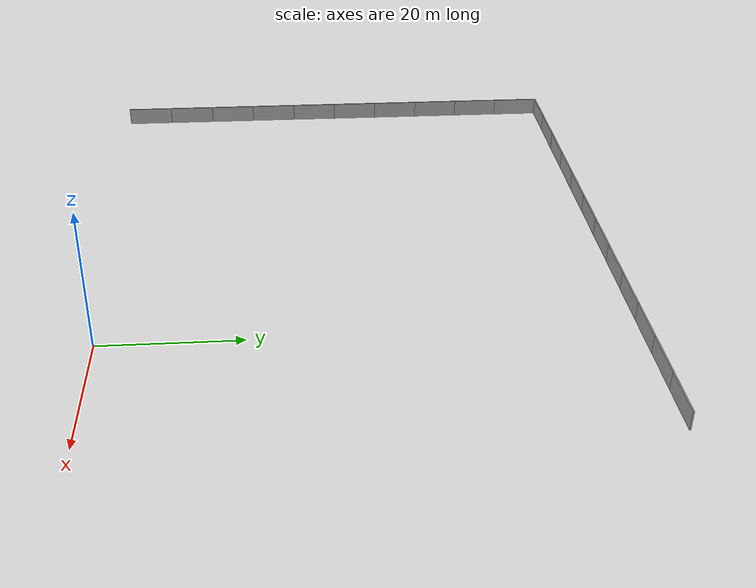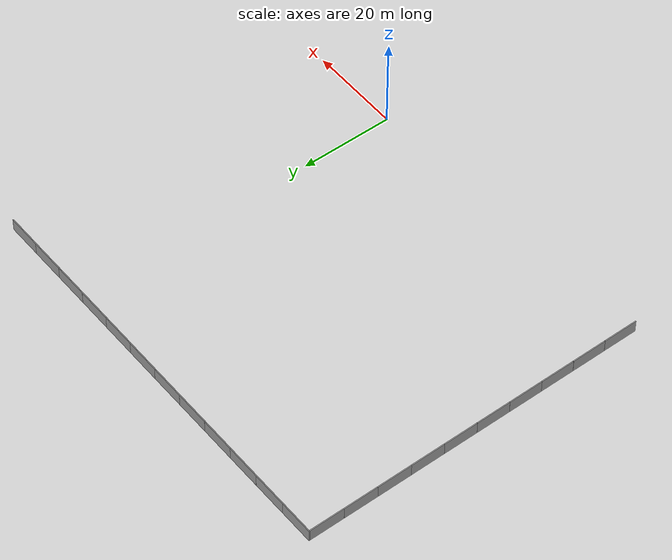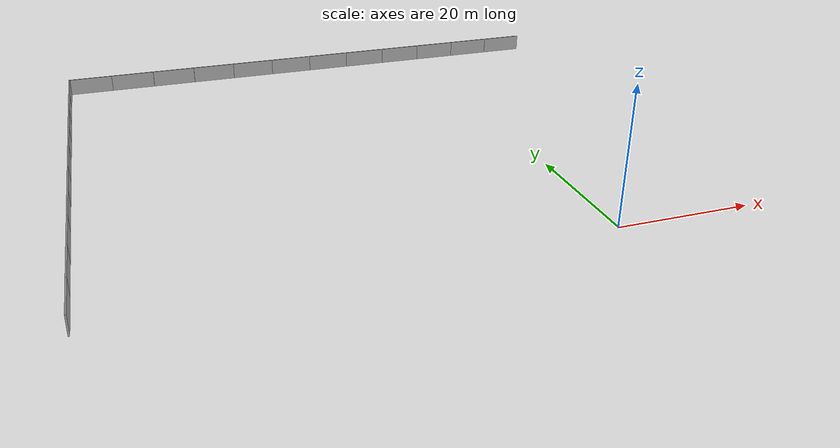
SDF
<sdf version="1.6">
 <world name="default">
  <model name="grey_wall_clone_10_clone_clone_8">
   <static>1</static>
   <link name="link">
    <pose>0 0 1.4 0 -0 0</pose>
    <collision name="collision"><geometry><box><size>7.5 0.2 2.8</size></box></geometry></collision>
    <visual name="visual">
     <cast_shadows>0</cast_shadows>
     <geometry><box><size>7.5 0.2 2.8</size></box></geometry>
     <material>
      <script>
       <uri>model://forest/grey_wall/materials/scripts</uri>
       <uri>model://forest/grey_wall/materials/textures</uri>
       <name>vrc/grey_wall</name>
      </script>
     </material>
    </visual>
   </link>
   <pose>17.3775 72.6269 0 0 -0 0</pose>
  </model>
  <model name="grey_wall_clone_10_clone_clone_9">
   <static>1</static>
   <link name="link">
    <pose>0 0 1.4 0 -0 0</pose>
    <collision name="collision"><geometry><box><size>7.5 0.2 2.8</size></box></geometry></collision>
    <visual name="visual">
     <cast_shadows>0</cast_shadows>
     <geometry><box><size>7.5 0.2 2.8</size></box></geometry>
     <material>
      <script>
       <uri>model://forest/grey_wall/materials/scripts</uri>
       <uri>model://forest/grey_wall/materials/textures</uri>
       <name>vrc/grey_wall</name>
      </script>
     </material>
    </visual>
   </link>
   <pose>9.8792 72.6386 0 0 -0 0</pose>
  </model>
  <model name="grey_wall_clone_10_clone_clone_10">
   <static>1</static>
   <link name="link">
    <pose>0 0 1.4 0 -0 0</pose>
    <collision name="collision"><geometry><box><size>7.5 0.2 2.8</size></box></geometry></collision>
    <visual name="visual">
     <cast_shadows>0</cast_shadows>
     <geometry><box><size>7.5 0.2 2.8</size></box></geometry>
     <material>
      <script>
       <uri>model://forest/grey_wall/materials/scripts</uri>
       <uri>model://forest/grey_wall/materials/textures</uri>
       <name>vrc/grey_wall</name>
      </script>
     </material>
    </visual>
   </link>
   <pose>2.37975 72.635 0 0 -0 0</pose>
  </model>
  <model name="grey_wall_clone_10_clone_clone_11">
   <static>1</static>
   <link name="link">
    <pose>0 0 1.4 0 -0 0</pose>
    <collision name="collision"><geometry><box><size>7.5 0.2 2.8</size></box></geometry></collision>
    <visual name="visual">
     <cast_shadows>0</cast_shadows>
     <geometry><box><size>7.5 0.2 2.8</size></box></geometry>
     <material>
      <script>
       <uri>model://forest/grey_wall/materials/scripts</uri>
       <uri>model://forest/grey_wall/materials/textures</uri>
       <name>vrc/grey_wall</name>
      </script>
     </material>
    </visual>
   </link>
   <pose>-5.09788 72.6331 0 0 -0 0</pose>
  </model>
  <model name="grey_wall_clone_10_clone_clone_12">
   <static>1</static>
   <link name="link">
    <pose>0 0 1.4 0 -0 0</pose>
    <collision name="collision"><geometry><box><size>7.5 0.2 2.8</size></box></geometry></collision>
    <visual name="visual">
     <cast_shadows>0</cast_shadows>
     <geometry><box><size>7.5 0.2 2.8</size></box></geometry>
     <material>
      <script>
       <uri>model://forest/grey_wall/materials/scripts</uri>
       <uri>model://forest/grey_wall/materials/textures</uri>
       <name>vrc/grey_wall</name>
      </script>
     </material>
    </visual>
   </link>
   <pose>-12.6061 72.6425 0 0 -0 0</pose>
  </model>
  <model name="grey_wall_clone_10_clone_clone_13">
   <static>1</static>
   <link name="link">
    <pose>0 0 1.4 0 -0 0</pose>
    <collision name="collision"><geometry><box><size>7.5 0.2 2.8</size></box></geometry></collision>
    <visual name="visual">
     <cast_shadows>0</cast_shadows>
     <geometry><box><size>7.5 0.2 2.8</size></box></geometry>
     <material>
      <script>
       <uri>model://forest/grey_wall/materials/scripts</uri>
       <uri>model://forest/grey_wall/materials/textures</uri>
       <name>vrc/grey_wall</name>
      </script>
     </material>
    </visual>
   </link>
   <pose>-20.1193 72.6527 0 0 -0 0</pose>
  </model>
  <model name="grey_wall_clone_10_clone_clone_14">
   <static>1</static>
   <link name="link">
    <pose>0 0 1.4 0 -0 0</pose>
    <collision name="collision"><geometry><box><size>7.5 0.2 2.8</size></box></geometry></collision>
    <visual name="visual">
     <cast_shadows>0</cast_shadows>
     <geometry><box><size>7.5 0.2 2.8</size></box></geometry>
     <material>
      <script>
       <uri>model://forest/grey_wall/materials/scripts</uri>
       <uri>model://forest/grey_wall/materials/textures</uri>
       <name>vrc/grey_wall</name>
      </script>
     </material>
    </visual>
   </link>
   <pose>-27.6199 72.6558 0 0 -0 0</pose>
  </model>
  <model name="grey_wall_clone_10_clone_clone_15">
   <static>1</static>
   <link name="link">
    <pose>0 0 1.4 0 -0 0</pose>
    <collision name="collision"><geometry><box><size>7.5 0.2 2.8</size></box></geometry></collision>
    <visual name="visual">
     <cast_shadows>0</cast_shadows>
     <geometry><box><size>7.5 0.2 2.8</size></box></geometry>
     <material>
      <script>
       <uri>model://forest/grey_wall/materials/scripts</uri>
       <uri>model://forest/grey_wall/materials/textures</uri>
       <name>vrc/grey_wall</name>
      </script>
     </material>
    </visual>
   </link>
   <pose>-35.1125 72.6503 0 0 -0 0</pose>
  </model>
  <model name="grey_wall_clone_10_clone_clone_16">
   <static>1</static>
   <link name="link">
    <pose>0 0 1.4 0 -0 0</pose>
    <collision name="collision"><geometry><box><size>7.5 0.2 2.8</size></box></geometry></collision>
    <visual name="visual">
     <cast_shadows>0</cast_shadows>
     <geometry><box><size>7.5 0.2 2.8</size></box></geometry>
     <material>
      <script>
       <uri>model://forest/grey_wall/materials/scripts</uri>
       <uri>model://forest/grey_wall/materials/textures</uri>
       <name>vrc/grey_wall</name>
      </script>
     </material>
    </visual>
   </link>
   <pose>-42.606 72.6465 0 0 -0 0</pose>
  </model>
  <model name="grey_wall_clone_10_clone_clone_17">
   <static>1</static>
   <link name="link">
    <pose>0 0 1.4 0 -0 0</pose>
    <collision name="collision"><geometry><box><size>7.5 0.2 2.8</size></box></geometry></collision>
    <visual name="visual">
     <cast_shadows>0</cast_shadows>
     <geometry><box><size>7.5 0.2 2.8</size></box></geometry>
     <material>
      <script>
       <uri>model://forest/grey_wall/materials/scripts</uri>
       <uri>model://forest/grey_wall/materials/textures</uri>
       <name>vrc/grey_wall</name>
      </script>
     </material>
    </visual>
   </link>
   <pose>-50.1127 72.6522 0 0 -0 0</pose>
  </model>
  <model name="grey_wall_clone_10_clone_clone_18">
   <static>1</static>
   <link name="link">
    <pose>0 0 1.4 0 -0 0</pose>
    <collision name="collision"><geometry><box><size>7.5 0.2 2.8</size></box></geometry></collision>
    <visual name="visual">
     <cast_shadows>0</cast_shadows>
     <geometry><box><size>7.5 0.2 2.8</size></box></geometry>
     <material>
      <script>
       <uri>model://forest/grey_wall/materials/scripts</uri>
       <uri>model://forest/grey_wall/materials/textures</uri>
       <name>vrc/grey_wall</name>
      </script>
     </material>
    </visual>
   </link>
   <pose>-57.6217 72.6499 0 0 -0 0</pose>
  </model>
  <model name="grey_wall_clone_10_clone_clone_19">
   <static>1</static>
   <link name="link">
    <pose>0 0 1.4 0 -0 0</pose>
    <collision name="collision"><geometry><box><size>7.5 0.2 2.8</size></box></geometry></collision>
    <visual name="visual">
     <cast_shadows>0</cast_shadows>
     <geometry><box><size>7.5 0.2 2.8</size></box></geometry>
     <material>
      <script>
       <uri>model://forest/grey_wall/materials/scripts</uri>
       <uri>model://forest/grey_wall/materials/textures</uri>
       <name>vrc/grey_wall</name>
      </script>
     </material>
    </visual>
   </link>
   <pose>-65.1107 72.6364 0 0 -0 0</pose>
  </model>
  <model name="grey_wall_clone_10_clone_0_clone_5_clone_12_clone">
   <static>1</static>
   <link name="link">
    <pose>0 0 1.4 0 -0 0</pose>
    <collision name="collision"><geometry><box><size>7.5 0.2 2.8</size></box></geometry></collision>
    <visual name="visual">
     <cast_shadows>0</cast_shadows>
     <geometry><box><size>7.5 0.2 2.8</size></box></geometry>
     <material>
      <script>
       <uri>model://forest/grey_wall/materials/scripts</uri>
       <uri>model://forest/grey_wall/materials/textures</uri>
       <name>vrc/grey_wall</name>
      </script>
     </material>
    </visual>
   </link>
   <pose>-68.7572 68.7982 0 0 0 -1.56932</pose>
  </model>
  <model name="grey_wall_clone_10_clone_0_clone_5_clone_12_clone_0">
   <static>1</static>
   <link name="link">
    <pose>0 0 1.4 0 -0 0</pose>
    <collision name="collision"><geometry><box><size>7.5 0.2 2.8</size></box></geometry></collision>
    <visual name="visual">
     <cast_shadows>0</cast_shadows>
     <geometry><box><size>7.5 0.2 2.8</size></box></geometry>
     <material>
      <script>
       <uri>model://forest/grey_wall/materials/scripts</uri>
       <uri>model://forest/grey_wall/materials/textures</uri>
       <name>vrc/grey_wall</name>
      </script>
     </material>
    </visual>
   </link>
   <pose>-68.7575 61.2964 0 0 0 -1.56932</pose>
  </model>
  <model name="grey_wall_clone_10_clone_0_clone_5_clone_12_clone_1">
   <static>1</static>
   <link name="link">
    <pose>0 0 1.4 0 -0 0</pose>
    <collision name="collision"><geometry><box><size>7.5 0.2 2.8</size></box></geometry></collision>
    <visual name="visual">
     <cast_shadows>0</cast_shadows>
     <geometry><box><size>7.5 0.2 2.8</size></box></geometry>
     <material>
      <script>
       <uri>model://forest/grey_wall/materials/scripts</uri>
       <uri>model://forest/grey_wall/materials/textures</uri>
       <name>vrc/grey_wall</name>
      </script>
     </material>
    </visual>
   </link>
   <pose>-68.7526 53.7973 0 0 0 -1.56932</pose>
  </model>
  <model name="grey_wall_clone_10_clone_0_clone_5_clone_12_clone_2">
   <static>1</static>
   <link name="link">
    <pose>0 0 1.4 0 -0 0</pose>
    <collision name="collision"><geometry><box><size>7.5 0.2 2.8</size></box></geometry></collision>
    <visual name="visual">
     <cast_shadows>0</cast_shadows>
     <geometry><box><size>7.5 0.2 2.8</size></box></geometry>
     <material>
      <script>
       <uri>model://forest/grey_wall/materials/scripts</uri>
       <uri>model://forest/grey_wall/materials/textures</uri>
       <name>vrc/grey_wall</name>
      </script>
     </material>
    </visual>
   </link>
   <pose>-68.7342 46.3034 0 0 0 -1.56932</pose>
  </model>
  <model name="grey_wall_clone_10_clone_0_clone_5_clone_12_clone_3">
   <static>1</static>
   <link name="link">
    <pose>0 0 1.4 0 -0 0</pose>
    <collision name="collision"><geometry><box><size>7.5 0.2 2.8</size></box></geometry></collision>
    <visual name="visual">
     <cast_shadows>0</cast_shadows>
     <geometry><box><size>7.5 0.2 2.8</size></box></geometry>
     <material>
      <script>
       <uri>model://forest/grey_wall/materials/scripts</uri>
       <uri>model://forest/grey_wall/materials/textures</uri>
       <name>vrc/grey_wall</name>
      </script>
     </material>
    </visual>
   </link>
   <pose>-68.7287 38.8101 0 0 0 -1.56932</pose>
  </model>
  <model name="grey_wall_clone_10_clone_0_clone_5_clone_12_clone_4">
   <static>1</static>
   <link name="link">
    <pose>0 0 1.4 0 -0 0</pose>
    <collision name="collision"><geometry><box><size>7.5 0.2 2.8</size></box></geometry></collision>
    <visual name="visual">
     <cast_shadows>0</cast_shadows>
     <geometry><box><size>7.5 0.2 2.8</size></box></geometry>
     <material>
      <script>
       <uri>model://forest/grey_wall/materials/scripts</uri>
       <uri>model://forest/grey_wall/materials/textures</uri>
       <name>vrc/grey_wall</name>
      </script>
     </material>
    </visual>
   </link>
   <pose>-68.7201 31.3023 0 0 0 -1.56932</pose>
  </model>
  <model name="grey_wall_clone_10_clone_0_clone_5_clone_12_clone_5">
   <static>1</static>
   <link name="link">
    <pose>0 0 1.4 0 -0 0</pose>
    <collision name="collision"><geometry><box><size>7.5 0.2 2.8</size></box></geometry></collision>
    <visual name="visual">
     <cast_shadows>0</cast_shadows>
     <geometry><box><size>7.5 0.2 2.8</size></box></geometry>
     <material>
      <script>
       <uri>model://forest/grey_wall/materials/scripts</uri>
       <uri>model://forest/grey_wall/materials/textures</uri>
       <name>vrc/grey_wall</name>
      </script>
     </material>
    </visual>
   </link>
   <pose>-68.7145 23.7907 0 0 0 -1.56932</pose>
  </model>
  <model name="grey_wall_clone_10_clone_0_clone_5_clone_12_clone_6">
   <static>1</static>
   <link name="link">
    <pose>0 0 1.4 0 -0 0</pose>
    <collision name="collision"><geometry><box><size>7.5 0.2 2.8</size></box></geometry></collision>
    <visual name="visual">
     <cast_shadows>0</cast_shadows>
     <geometry><box><size>7.5 0.2 2.8</size></box></geometry>
     <material>
      <script>
       <uri>model://forest/grey_wall/materials/scripts</uri>
       <uri>model://forest/grey_wall/materials/textures</uri>
       <name>vrc/grey_wall</name>
      </script>
     </material>
    </visual>
   </link>
   <pose>-68.6998 16.2892 0 0 0 -1.56932</pose>
  </model>
  <model name="grey_wall_clone_10_clone_0_clone_5_clone_12_clone_7">
   <static>1</static>
   <link name="link">
    <pose>0 0 1.4 0 -0 0</pose>
    <collision name="collision"><geometry><box><size>7.5 0.2 2.8</size></box></geometry></collision>
    <visual name="visual">
     <cast_shadows>0</cast_shadows>
     <geometry><box><size>7.5 0.2 2.8</size></box></geometry>
     <material>
      <script>
       <uri>model://forest/grey_wall/materials/scripts</uri>
       <uri>model://forest/grey_wall/materials/textures</uri>
       <name>vrc/grey_wall</name>
      </script>
     </material>
    </visual>
   </link>
   <pose>-68.6952 8.77311 0 0 0 -1.56932</pose>
  </model>
  <model name="grey_wall_clone_10_clone_0_clone_5_clone_12_clone_8">
   <static>1</static>
   <link name="link">
    <pose>0 0 1.4 0 -0 0</pose>
    <collision name="collision"><geometry><box><size>7.5 0.2 2.8</size></box></geometry></collision>
    <visual name="visual">
     <cast_shadows>0</cast_shadows>
     <geometry><box><size>7.5 0.2 2.8</size></box></geometry>
     <material>
      <script>
       <uri>model://forest/grey_wall/materials/scripts</uri>
       <uri>model://forest/grey_wall/materials/textures</uri>
       <name>vrc/grey_wall</name>
      </script>
     </material>
    </visual>
   </link>
   <pose>-68.6796 1.26105 0 0 0 -1.56932</pose>
  </model>
 </world>
</sdf>
